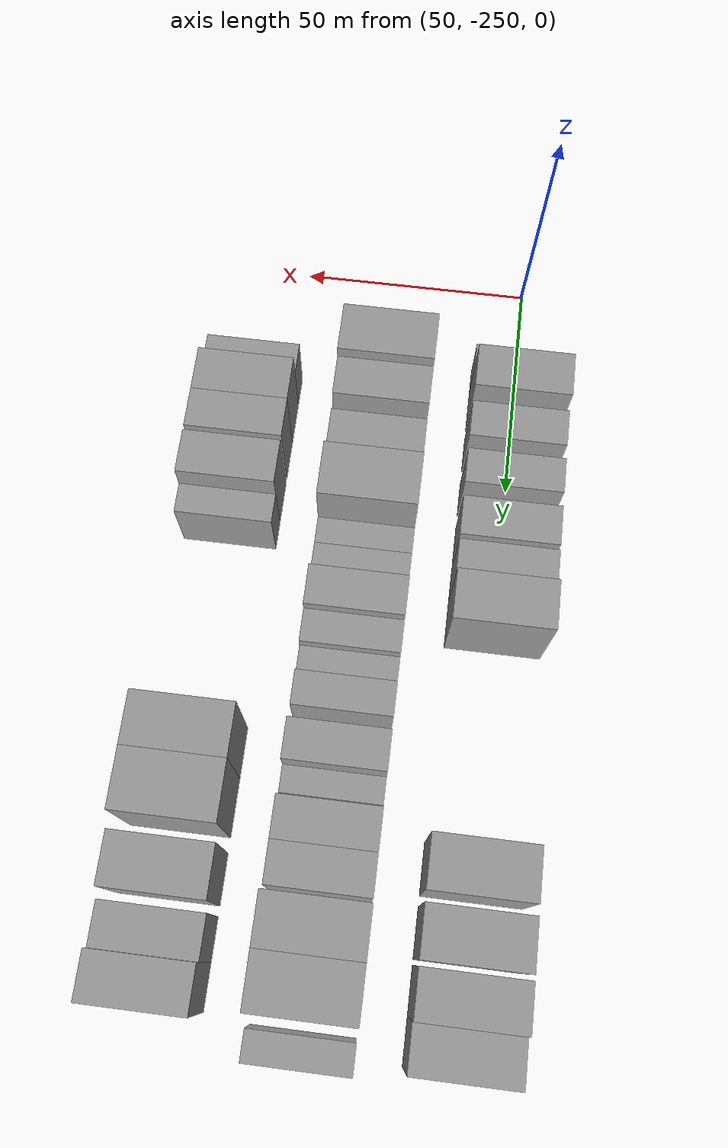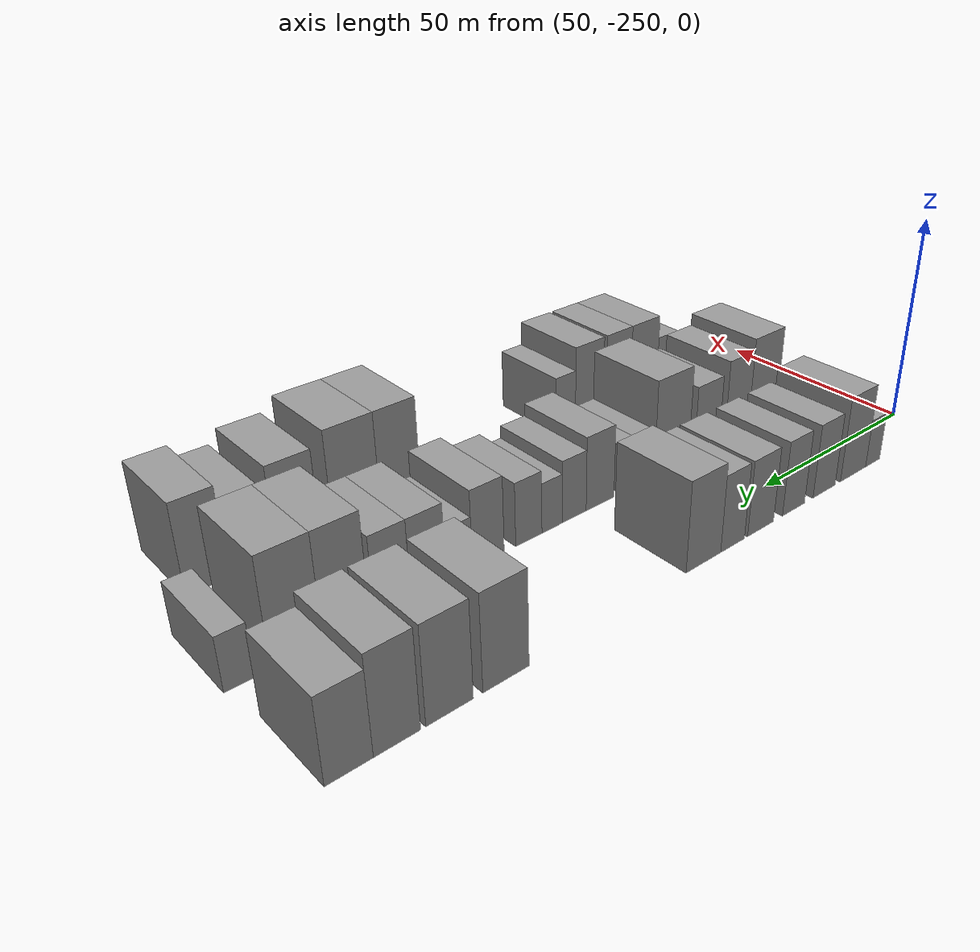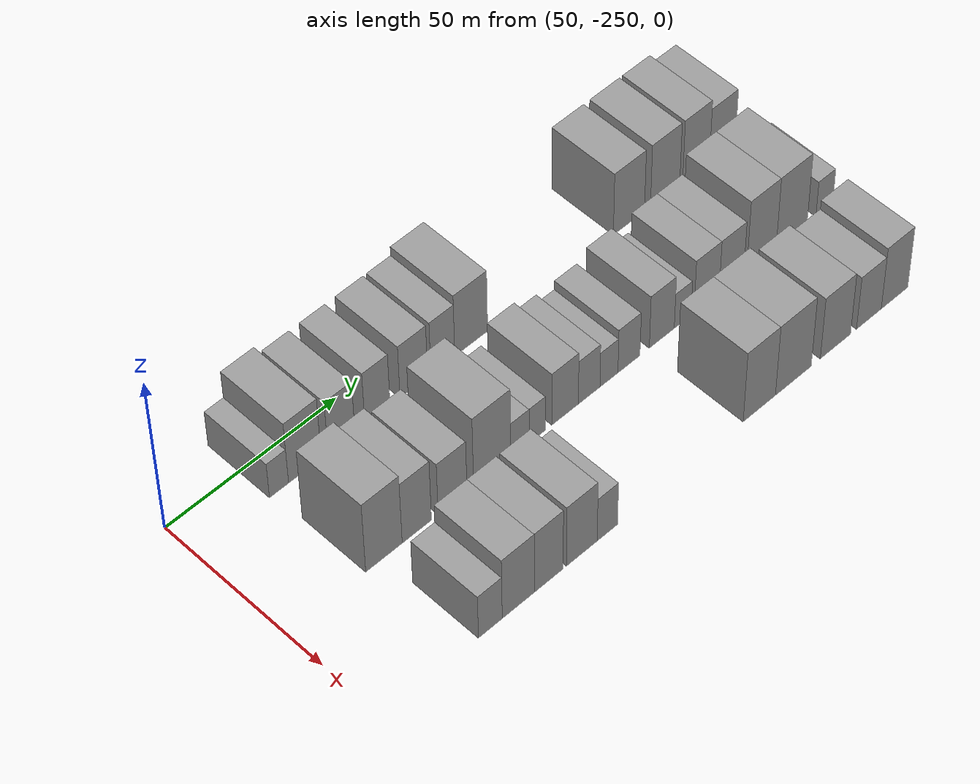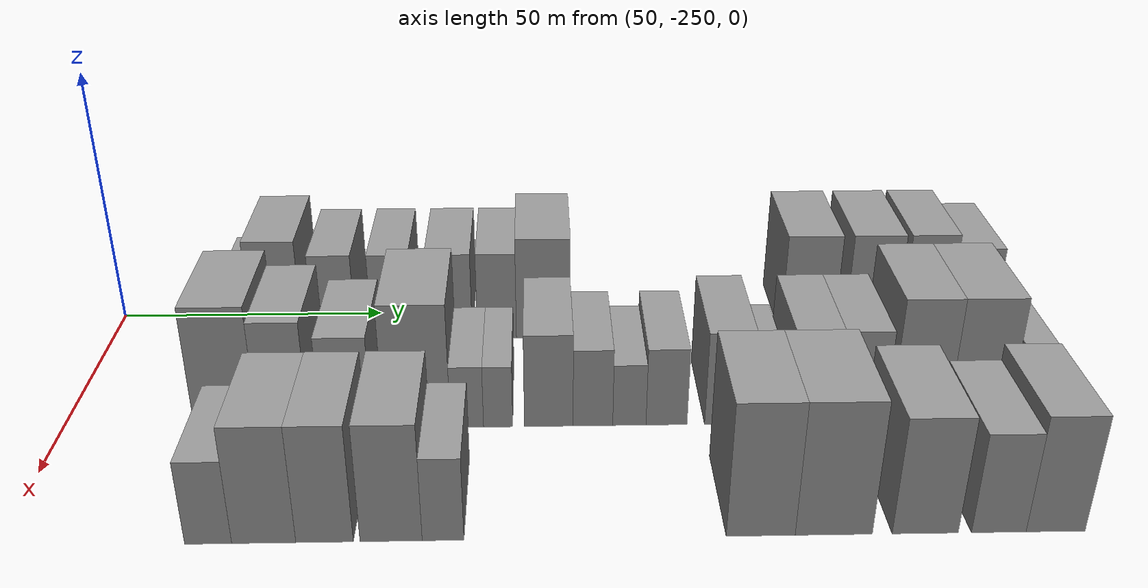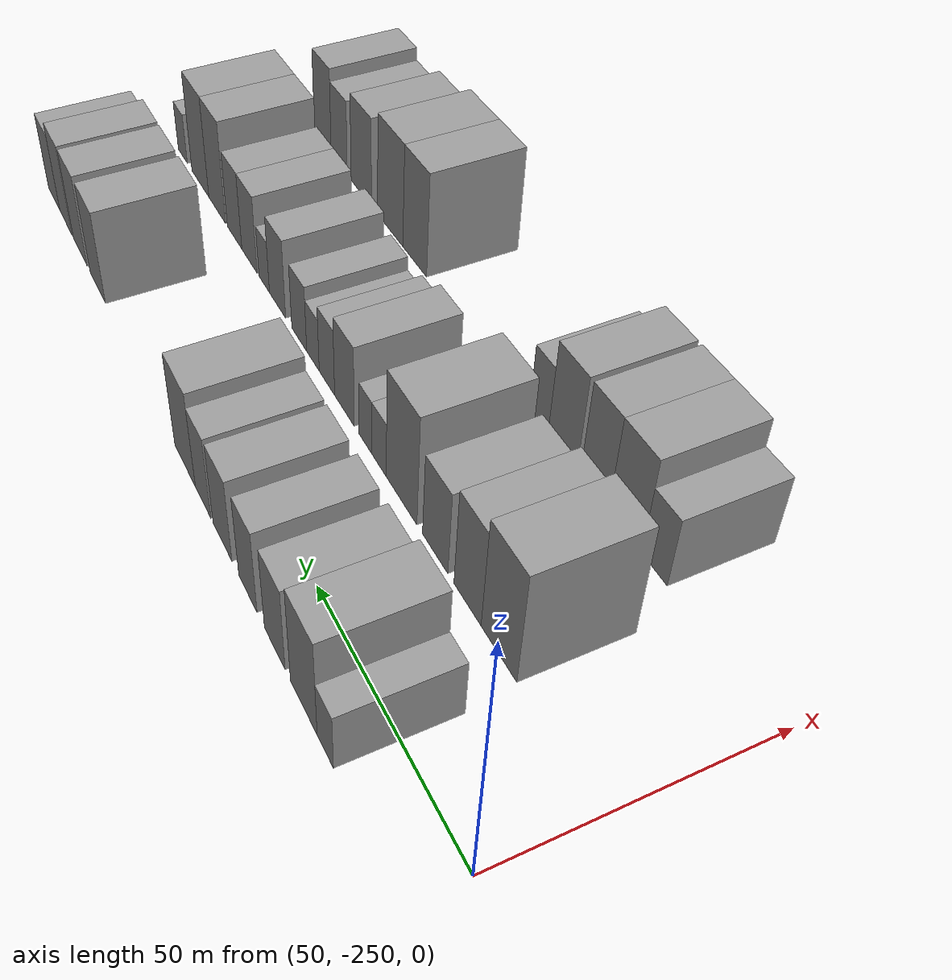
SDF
<sdf version="1.6">
 <world name="default">
  <model name="building_13">
   <static>1</static>
   <pose>50.0000 -226.0542 0 0.000000 0.000000 0.000000</pose>
   <link name="link">
    <pose>0 0 6.00 0 0 0</pose>
    <collision name="collision"><geometry><box><size>20.0000 5.5673 12.0000</size></box></geometry></collision>
    <visual name="visual">
     <cast_shadows>0</cast_shadows>
     <geometry><box><size>20.0000 5.5673 12.0000</size></box></geometry>
     <material>
      <script>
       <uri>model://grey_wall/materials/scripts</uri>
       <uri>model://grey_wall/materials/textures</uri>
       <name>vrc/grey_wall</name>
      </script>
     </material>
    </visual>
   </link>
  </model>
  <model name="building_14">
   <static>1</static>
   <pose>50.0000 -218.4649 0 0.000000 0.000000 0.000000</pose>
   <link name="link">
    <pose>0 0 10.50 0 0 0</pose>
    <collision name="collision"><geometry><box><size>20.0000 9.6113 21.0000</size></box></geometry></collision>
    <visual name="visual">
     <cast_shadows>0</cast_shadows>
     <geometry><box><size>20.0000 9.6113 21.0000</size></box></geometry>
     <material>
      <script>
       <uri>model://grey_wall/materials/scripts</uri>
       <uri>model://grey_wall/materials/textures</uri>
       <name>vrc/grey_wall</name>
      </script>
     </material>
    </visual>
   </link>
  </model>
  <model name="building_15">
   <static>1</static>
   <pose>50.0000 -207.6624 0 0.000000 0.000000 0.000000</pose>
   <link name="link">
    <pose>0 0 9.00 0 0 0</pose>
    <collision name="collision"><geometry><box><size>20.0000 7.9937 18.0000</size></box></geometry></collision>
    <visual name="visual">
     <cast_shadows>0</cast_shadows>
     <geometry><box><size>20.0000 7.9937 18.0000</size></box></geometry>
     <material>
      <script>
       <uri>model://grey_wall/materials/scripts</uri>
       <uri>model://grey_wall/materials/textures</uri>
       <name>vrc/grey_wall</name>
      </script>
     </material>
    </visual>
   </link>
  </model>
  <model name="building_16">
   <static>1</static>
   <pose>50.0000 -196.8680 0 0.000000 0.000000 0.000000</pose>
   <link name="link">
    <pose>0 0 9.00 0 0 0</pose>
    <collision name="collision"><geometry><box><size>20.0000 7.5952 18.0000</size></box></geometry></collision>
    <visual name="visual">
     <cast_shadows>0</cast_shadows>
     <geometry><box><size>20.0000 7.5952 18.0000</size></box></geometry>
     <material>
      <script>
       <uri>model://grey_wall/materials/scripts</uri>
       <uri>model://grey_wall/materials/textures</uri>
       <name>vrc/grey_wall</name>
      </script>
     </material>
    </visual>
   </link>
  </model>
  <model name="building_17">
   <static>1</static>
   <pose>50.0000 -185.8520 0 0.000000 0.000000 0.000000</pose>
   <link name="link">
    <pose>0 0 9.00 0 0 0</pose>
    <collision name="collision"><geometry><box><size>20.0000 8.4368 18.0000</size></box></geometry></collision>
    <visual name="visual">
     <cast_shadows>0</cast_shadows>
     <geometry><box><size>20.0000 8.4368 18.0000</size></box></geometry>
     <material>
      <script>
       <uri>model://grey_wall/materials/scripts</uri>
       <uri>model://grey_wall/materials/textures</uri>
       <name>vrc/grey_wall</name>
      </script>
     </material>
    </visual>
   </link>
  </model>
  <model name="building_18">
   <static>1</static>
   <pose>50.0000 -176.9500 0 0.000000 0.000000 0.000000</pose>
   <link name="link">
    <pose>0 0 9.00 0 0 0</pose>
    <collision name="collision"><geometry><box><size>20.0000 7.3672 18.0000</size></box></geometry></collision>
    <visual name="visual">
     <cast_shadows>0</cast_shadows>
     <geometry><box><size>20.0000 7.3672 18.0000</size></box></geometry>
     <material>
      <script>
       <uri>model://grey_wall/materials/scripts</uri>
       <uri>model://grey_wall/materials/textures</uri>
       <name>vrc/grey_wall</name>
      </script>
     </material>
    </visual>
   </link>
  </model>
  <model name="building_19">
   <static>1</static>
   <pose>50.0000 -168.1503 0 0.000000 0.000000 0.000000</pose>
   <link name="link">
    <pose>0 0 10.50 0 0 0</pose>
    <collision name="collision"><geometry><box><size>20.0000 10.2322 21.0000</size></box></geometry></collision>
    <visual name="visual">
     <cast_shadows>0</cast_shadows>
     <geometry><box><size>20.0000 10.2322 21.0000</size></box></geometry>
     <material>
      <script>
       <uri>model://grey_wall/materials/scripts</uri>
       <uri>model://grey_wall/materials/textures</uri>
       <name>vrc/grey_wall</name>
      </script>
     </material>
    </visual>
   </link>
  </model>
  <model name="building_20">
   <static>1</static>
   <pose>50.0000 -117.7029 0 0.000000 0.000000 0.000000</pose>
   <link name="link">
    <pose>0 0 10.50 0 0 0</pose>
    <collision name="collision"><geometry><box><size>20.0000 10.2209 21.0000</size></box></geometry></collision>
    <visual name="visual">
     <cast_shadows>0</cast_shadows>
     <geometry><box><size>20.0000 10.2209 21.0000</size></box></geometry>
     <material>
      <script>
       <uri>model://grey_wall/materials/scripts</uri>
       <uri>model://grey_wall/materials/textures</uri>
       <name>vrc/grey_wall</name>
      </script>
     </material>
    </visual>
   </link>
  </model>
  <model name="building_21">
   <static>1</static>
   <pose>50.0000 -105.7209 0 0.000000 0.000000 0.000000</pose>
   <link name="link">
    <pose>0 0 10.50 0 0 0</pose>
    <collision name="collision"><geometry><box><size>20.0000 9.7430 21.0000</size></box></geometry></collision>
    <visual name="visual">
     <cast_shadows>0</cast_shadows>
     <geometry><box><size>20.0000 9.7430 21.0000</size></box></geometry>
     <material>
      <script>
       <uri>model://grey_wall/materials/scripts</uri>
       <uri>model://grey_wall/materials/textures</uri>
       <name>vrc/grey_wall</name>
      </script>
     </material>
    </visual>
   </link>
  </model>
  <model name="building_22">
   <static>1</static>
   <pose>50.0000 -95.3315 0 0.000000 0.000000 0.000000</pose>
   <link name="link">
    <pose>0 0 10.50 0 0 0</pose>
    <collision name="collision"><geometry><box><size>20.0000 9.0359 21.0000</size></box></geometry></collision>
    <visual name="visual">
     <cast_shadows>0</cast_shadows>
     <geometry><box><size>20.0000 9.0359 21.0000</size></box></geometry>
     <material>
      <script>
       <uri>model://grey_wall/materials/scripts</uri>
       <uri>model://grey_wall/materials/textures</uri>
       <name>vrc/grey_wall</name>
      </script>
     </material>
    </visual>
   </link>
  </model>
  <model name="building_23">
   <static>1</static>
   <pose>50.0000 -86.3866 0 0.000000 0.000000 0.000000</pose>
   <link name="link">
    <pose>0 0 9.00 0 0 0</pose>
    <collision name="collision"><geometry><box><size>20.0000 8.8540 18.0000</size></box></geometry></collision>
    <visual name="visual">
     <cast_shadows>0</cast_shadows>
     <geometry><box><size>20.0000 8.8540 18.0000</size></box></geometry>
     <material>
      <script>
       <uri>model://grey_wall/materials/scripts</uri>
       <uri>model://grey_wall/materials/textures</uri>
       <name>vrc/grey_wall</name>
      </script>
     </material>
    </visual>
   </link>
  </model>
  <model name="building_89">
   <static>1</static>
   <pose>79.0000 -222.1416 0 0.000000 0.000000 0.000000</pose>
   <link name="link">
    <pose>0 0 12.00 0 0 0</pose>
    <collision name="collision"><geometry><box><size>20.0000 10.6684 24.0000</size></box></geometry></collision>
    <visual name="visual">
     <cast_shadows>0</cast_shadows>
     <geometry><box><size>20.0000 10.6684 24.0000</size></box></geometry>
     <material>
      <script>
       <uri>model://grey_wall/materials/scripts</uri>
       <uri>model://grey_wall/materials/textures</uri>
       <name>vrc/grey_wall</name>
      </script>
     </material>
    </visual>
   </link>
  </model>
  <model name="building_90">
   <static>1</static>
   <pose>79.0000 -212.4891 0 0.000000 0.000000 0.000000</pose>
   <link name="link">
    <pose>0 0 10.50 0 0 0</pose>
    <collision name="collision"><geometry><box><size>20.0000 8.6366 21.0000</size></box></geometry></collision>
    <visual name="visual">
     <cast_shadows>0</cast_shadows>
     <geometry><box><size>20.0000 8.6366 21.0000</size></box></geometry>
     <material>
      <script>
       <uri>model://grey_wall/materials/scripts</uri>
       <uri>model://grey_wall/materials/textures</uri>
       <name>vrc/grey_wall</name>
      </script>
     </material>
    </visual>
   </link>
  </model>
  <model name="building_91">
   <static>1</static>
   <pose>79.0000 -201.8551 0 0.000000 0.000000 0.000000</pose>
   <link name="link">
    <pose>0 0 9.00 0 0 0</pose>
    <collision name="collision"><geometry><box><size>20.0000 8.6316 18.0000</size></box></geometry></collision>
    <visual name="visual">
     <cast_shadows>0</cast_shadows>
     <geometry><box><size>20.0000 8.6316 18.0000</size></box></geometry>
     <material>
      <script>
       <uri>model://grey_wall/materials/scripts</uri>
       <uri>model://grey_wall/materials/textures</uri>
       <name>vrc/grey_wall</name>
      </script>
     </material>
    </visual>
   </link>
  </model>
  <model name="building_92">
   <static>1</static>
   <pose>79.0000 -189.8855 0 0.000000 0.000000 0.000000</pose>
   <link name="link">
    <pose>0 0 12.00 0 0 0</pose>
    <collision name="collision"><geometry><box><size>20.0000 11.3077 24.0000</size></box></geometry></collision>
    <visual name="visual">
     <cast_shadows>0</cast_shadows>
     <geometry><box><size>20.0000 11.3077 24.0000</size></box></geometry>
     <material>
      <script>
       <uri>model://grey_wall/materials/scripts</uri>
       <uri>model://grey_wall/materials/textures</uri>
       <name>vrc/grey_wall</name>
      </script>
     </material>
    </visual>
   </link>
  </model>
  <model name="building_93">
   <static>1</static>
   <pose>79.0000 -181.4176 0 0.000000 0.000000 0.000000</pose>
   <link name="link">
    <pose>0 0 6.00 0 0 0</pose>
    <collision name="collision"><geometry><box><size>20.0000 5.6279 12.0000</size></box></geometry></collision>
    <visual name="visual">
     <cast_shadows>0</cast_shadows>
     <geometry><box><size>20.0000 5.6279 12.0000</size></box></geometry>
     <material>
      <script>
       <uri>model://grey_wall/materials/scripts</uri>
       <uri>model://grey_wall/materials/textures</uri>
       <name>vrc/grey_wall</name>
      </script>
     </material>
    </visual>
   </link>
  </model>
  <model name="building_94">
   <static>1</static>
   <pose>79.0000 -176.1201 0 0.000000 0.000000 0.000000</pose>
   <link name="link">
    <pose>0 0 6.00 0 0 0</pose>
    <collision name="collision"><geometry><box><size>20.0000 4.9671 12.0000</size></box></geometry></collision>
    <visual name="visual">
     <cast_shadows>0</cast_shadows>
     <geometry><box><size>20.0000 4.9671 12.0000</size></box></geometry>
     <material>
      <script>
       <uri>model://grey_wall/materials/scripts</uri>
       <uri>model://grey_wall/materials/textures</uri>
       <name>vrc/grey_wall</name>
      </script>
     </material>
    </visual>
   </link>
  </model>
  <model name="building_95">
   <static>1</static>
   <pose>79.0000 -167.5046 0 0.000000 0.000000 0.000000</pose>
   <link name="link">
    <pose>0 0 9.00 0 0 0</pose>
    <collision name="collision"><geometry><box><size>20.0000 8.2639 18.0000</size></box></geometry></collision>
    <visual name="visual">
     <cast_shadows>0</cast_shadows>
     <geometry><box><size>20.0000 8.2639 18.0000</size></box></geometry>
     <material>
      <script>
       <uri>model://grey_wall/materials/scripts</uri>
       <uri>model://grey_wall/materials/textures</uri>
       <name>vrc/grey_wall</name>
      </script>
     </material>
    </visual>
   </link>
  </model>
  <model name="building_96">
   <static>1</static>
   <pose>79.0000 -159.9873 0 0.000000 0.000000 0.000000</pose>
   <link name="link">
    <pose>0 0 7.50 0 0 0</pose>
    <collision name="collision"><geometry><box><size>20.0000 6.7706 15.0000</size></box></geometry></collision>
    <visual name="visual">
     <cast_shadows>0</cast_shadows>
     <geometry><box><size>20.0000 6.7706 15.0000</size></box></geometry>
     <material>
      <script>
       <uri>model://grey_wall/materials/scripts</uri>
       <uri>model://grey_wall/materials/textures</uri>
       <name>vrc/grey_wall</name>
      </script>
     </material>
    </visual>
   </link>
  </model>
  <model name="building_97">
   <static>1</static>
   <pose>79.0000 -153.7625 0 0.000000 0.000000 0.000000</pose>
   <link name="link">
    <pose>0 0 6.00 0 0 0</pose>
    <collision name="collision"><geometry><box><size>20.0000 5.6791 12.0000</size></box></geometry></collision>
    <visual name="visual">
     <cast_shadows>0</cast_shadows>
     <geometry><box><size>20.0000 5.6791 12.0000</size></box></geometry>
     <material>
      <script>
       <uri>model://grey_wall/materials/scripts</uri>
       <uri>model://grey_wall/materials/textures</uri>
       <name>vrc/grey_wall</name>
      </script>
     </material>
    </visual>
   </link>
  </model>
  <model name="building_98">
   <static>1</static>
   <pose>79.0000 -147.4094 0 0.000000 0.000000 0.000000</pose>
   <link name="link">
    <pose>0 0 7.50 0 0 0</pose>
    <collision name="collision"><geometry><box><size>20.0000 7.0272 15.0000</size></box></geometry></collision>
    <visual name="visual">
     <cast_shadows>0</cast_shadows>
     <geometry><box><size>20.0000 7.0272 15.0000</size></box></geometry>
     <material>
      <script>
       <uri>model://grey_wall/materials/scripts</uri>
       <uri>model://grey_wall/materials/textures</uri>
       <name>vrc/grey_wall</name>
      </script>
     </material>
    </visual>
   </link>
  </model>
  <model name="building_99">
   <static>1</static>
   <pose>79.0000 -136.8767 0 0.000000 0.000000 0.000000</pose>
   <link name="link">
    <pose>0 0 9.00 0 0 0</pose>
    <collision name="collision"><geometry><box><size>20.0000 8.0382 18.0000</size></box></geometry></collision>
    <visual name="visual">
     <cast_shadows>0</cast_shadows>
     <geometry><box><size>20.0000 8.0382 18.0000</size></box></geometry>
     <material>
      <script>
       <uri>model://grey_wall/materials/scripts</uri>
       <uri>model://grey_wall/materials/textures</uri>
       <name>vrc/grey_wall</name>
      </script>
     </material>
    </visual>
   </link>
  </model>
  <model name="building_100">
   <static>1</static>
   <pose>79.0000 -130.1507 0 0.000000 0.000000 0.000000</pose>
   <link name="link">
    <pose>0 0 6.00 0 0 0</pose>
    <collision name="collision"><geometry><box><size>20.0000 5.4139 12.0000</size></box></geometry></collision>
    <visual name="visual">
     <cast_shadows>0</cast_shadows>
     <geometry><box><size>20.0000 5.4139 12.0000</size></box></geometry>
     <material>
      <script>
       <uri>model://grey_wall/materials/scripts</uri>
       <uri>model://grey_wall/materials/textures</uri>
       <name>vrc/grey_wall</name>
      </script>
     </material>
    </visual>
   </link>
  </model>
  <model name="building_101">
   <static>1</static>
   <pose>79.0000 -122.3337 0 0.000000 0.000000 0.000000</pose>
   <link name="link">
    <pose>0 0 9.00 0 0 0</pose>
    <collision name="collision"><geometry><box><size>20.0000 8.2200 18.0000</size></box></geometry></collision>
    <visual name="visual">
     <cast_shadows>0</cast_shadows>
     <geometry><box><size>20.0000 8.2200 18.0000</size></box></geometry>
     <material>
      <script>
       <uri>model://grey_wall/materials/scripts</uri>
       <uri>model://grey_wall/materials/textures</uri>
       <name>vrc/grey_wall</name>
      </script>
     </material>
    </visual>
   </link>
  </model>
  <model name="building_102">
   <static>1</static>
   <pose>79.0000 -114.1577 0 0.000000 0.000000 0.000000</pose>
   <link name="link">
    <pose>0 0 9.00 0 0 0</pose>
    <collision name="collision"><geometry><box><size>20.0000 8.1321 18.0000</size></box></geometry></collision>
    <visual name="visual">
     <cast_shadows>0</cast_shadows>
     <geometry><box><size>20.0000 8.1321 18.0000</size></box></geometry>
     <material>
      <script>
       <uri>model://grey_wall/materials/scripts</uri>
       <uri>model://grey_wall/materials/textures</uri>
       <name>vrc/grey_wall</name>
      </script>
     </material>
    </visual>
   </link>
  </model>
  <model name="building_103">
   <static>1</static>
   <pose>79.0000 -104.1636 0 0.000000 0.000000 0.000000</pose>
   <link name="link">
    <pose>0 0 12.00 0 0 0</pose>
    <collision name="collision"><geometry><box><size>20.0000 9.8561 24.0000</size></box></geometry></collision>
    <visual name="visual">
     <cast_shadows>0</cast_shadows>
     <geometry><box><size>20.0000 9.8561 24.0000</size></box></geometry>
     <material>
      <script>
       <uri>model://grey_wall/materials/scripts</uri>
       <uri>model://grey_wall/materials/textures</uri>
       <name>vrc/grey_wall</name>
      </script>
     </material>
    </visual>
   </link>
  </model>
  <model name="building_104">
   <static>1</static>
   <pose>79.0000 -94.0075 0 0.000000 0.000000 0.000000</pose>
   <link name="link">
    <pose>0 0 12.00 0 0 0</pose>
    <collision name="collision"><geometry><box><size>20.0000 10.4560 24.0000</size></box></geometry></collision>
    <visual name="visual">
     <cast_shadows>0</cast_shadows>
     <geometry><box><size>20.0000 10.4560 24.0000</size></box></geometry>
     <material>
      <script>
       <uri>model://grey_wall/materials/scripts</uri>
       <uri>model://grey_wall/materials/textures</uri>
       <name>vrc/grey_wall</name>
      </script>
     </material>
    </visual>
   </link>
  </model>
  <model name="building_105">
   <static>1</static>
   <pose>79.0000 -82.8937 0 0.000000 0.000000 0.000000</pose>
   <link name="link">
    <pose>0 0 6.00 0 0 0</pose>
    <collision name="collision"><geometry><box><size>20.0000 5.7716 12.0000</size></box></geometry></collision>
    <visual name="visual">
     <cast_shadows>0</cast_shadows>
     <geometry><box><size>20.0000 5.7716 12.0000</size></box></geometry>
     <material>
      <script>
       <uri>model://grey_wall/materials/scripts</uri>
       <uri>model://grey_wall/materials/textures</uri>
       <name>vrc/grey_wall</name>
      </script>
     </material>
    </visual>
   </link>
  </model>
  <model name="building_165">
   <static>1</static>
   <pose>108.0000 -218.7602 0 0.000000 0.000000 0.000000</pose>
   <link name="link">
    <pose>0 0 7.50 0 0 0</pose>
    <collision name="collision"><geometry><box><size>20.0000 6.9812 15.0000</size></box></geometry></collision>
    <visual name="visual">
     <cast_shadows>0</cast_shadows>
     <geometry><box><size>20.0000 6.9812 15.0000</size></box></geometry>
     <material>
      <script>
       <uri>model://grey_wall/materials/scripts</uri>
       <uri>model://grey_wall/materials/textures</uri>
       <name>vrc/grey_wall</name>
      </script>
     </material>
    </visual>
   </link>
  </model>
  <model name="building_166">
   <static>1</static>
   <pose>108.0000 -210.4960 0 0.000000 0.000000 0.000000</pose>
   <link name="link">
    <pose>0 0 10.50 0 0 0</pose>
    <collision name="collision"><geometry><box><size>20.0000 9.5470 21.0000</size></box></geometry></collision>
    <visual name="visual">
     <cast_shadows>0</cast_shadows>
     <geometry><box><size>20.0000 9.5470 21.0000</size></box></geometry>
     <material>
      <script>
       <uri>model://grey_wall/materials/scripts</uri>
       <uri>model://grey_wall/materials/textures</uri>
       <name>vrc/grey_wall</name>
      </script>
     </material>
    </visual>
   </link>
  </model>
  <model name="building_167">
   <static>1</static>
   <pose>108.0000 -201.4382 0 0.000000 0.000000 0.000000</pose>
   <link name="link">
    <pose>0 0 10.50 0 0 0</pose>
    <collision name="collision"><geometry><box><size>20.0000 8.5687 21.0000</size></box></geometry></collision>
    <visual name="visual">
     <cast_shadows>0</cast_shadows>
     <geometry><box><size>20.0000 8.5687 21.0000</size></box></geometry>
     <material>
      <script>
       <uri>model://grey_wall/materials/scripts</uri>
       <uri>model://grey_wall/materials/textures</uri>
       <name>vrc/grey_wall</name>
      </script>
     </material>
    </visual>
   </link>
  </model>
  <model name="building_168">
   <static>1</static>
   <pose>108.0000 -191.5086 0 0.000000 0.000000 0.000000</pose>
   <link name="link">
    <pose>0 0 10.50 0 0 0</pose>
    <collision name="collision"><geometry><box><size>20.0000 9.2904 21.0000</size></box></geometry></collision>
    <visual name="visual">
     <cast_shadows>0</cast_shadows>
     <geometry><box><size>20.0000 9.2904 21.0000</size></box></geometry>
     <material>
      <script>
       <uri>model://grey_wall/materials/scripts</uri>
       <uri>model://grey_wall/materials/textures</uri>
       <name>vrc/grey_wall</name>
      </script>
     </material>
    </visual>
   </link>
  </model>
  <model name="building_169">
   <static>1</static>
   <pose>108.0000 -183.7386 0 0.000000 0.000000 0.000000</pose>
   <link name="link">
    <pose>0 0 7.50 0 0 0</pose>
    <collision name="collision"><geometry><box><size>20.0000 6.2496 15.0000</size></box></geometry></collision>
    <visual name="visual">
     <cast_shadows>0</cast_shadows>
     <geometry><box><size>20.0000 6.2496 15.0000</size></box></geometry>
     <material>
      <script>
       <uri>model://grey_wall/materials/scripts</uri>
       <uri>model://grey_wall/materials/textures</uri>
       <name>vrc/grey_wall</name>
      </script>
     </material>
    </visual>
   </link>
  </model>
  <model name="building_170">
   <static>1</static>
   <pose>108.0000 -135.9802 0 0.000000 0.000000 0.000000</pose>
   <link name="link">
    <pose>0 0 12.00 0 0 0</pose>
    <collision name="collision"><geometry><box><size>20.0000 10.4224 24.0000</size></box></geometry></collision>
    <visual name="visual">
     <cast_shadows>0</cast_shadows>
     <geometry><box><size>20.0000 10.4224 24.0000</size></box></geometry>
     <material>
      <script>
       <uri>model://grey_wall/materials/scripts</uri>
       <uri>model://grey_wall/materials/textures</uri>
       <name>vrc/grey_wall</name>
      </script>
     </material>
    </visual>
   </link>
  </model>
  <model name="building_171">
   <static>1</static>
   <pose>108.0000 -124.9229 0 0.000000 0.000000 0.000000</pose>
   <link name="link">
    <pose>0 0 12.00 0 0 0</pose>
    <collision name="collision"><geometry><box><size>20.0000 11.6921 24.0000</size></box></geometry></collision>
    <visual name="visual">
     <cast_shadows>0</cast_shadows>
     <geometry><box><size>20.0000 11.6921 24.0000</size></box></geometry>
     <material>
      <script>
       <uri>model://grey_wall/materials/scripts</uri>
       <uri>model://grey_wall/materials/textures</uri>
       <name>vrc/grey_wall</name>
      </script>
     </material>
    </visual>
   </link>
  </model>
  <model name="building_172">
   <static>1</static>
   <pose>108.0000 -111.0536 0 0.000000 0.000000 0.000000</pose>
   <link name="link">
    <pose>0 0 10.50 0 0 0</pose>
    <collision name="collision"><geometry><box><size>20.0000 10.0466 21.0000</size></box></geometry></collision>
    <visual name="visual">
     <cast_shadows>0</cast_shadows>
     <geometry><box><size>20.0000 10.0466 21.0000</size></box></geometry>
     <material>
      <script>
       <uri>model://grey_wall/materials/scripts</uri>
       <uri>model://grey_wall/materials/textures</uri>
       <name>vrc/grey_wall</name>
      </script>
     </material>
    </visual>
   </link>
  </model>
  <model name="building_173">
   <static>1</static>
   <pose>108.0000 -99.8712 0 0.000000 0.000000 0.000000</pose>
   <link name="link">
    <pose>0 0 9.00 0 0 0</pose>
    <collision name="collision"><geometry><box><size>20.0000 8.3182 18.0000</size></box></geometry></collision>
    <visual name="visual">
     <cast_shadows>0</cast_shadows>
     <geometry><box><size>20.0000 8.3182 18.0000</size></box></geometry>
     <material>
      <script>
       <uri>model://grey_wall/materials/scripts</uri>
       <uri>model://grey_wall/materials/textures</uri>
       <name>vrc/grey_wall</name>
      </script>
     </material>
    </visual>
   </link>
  </model>
  <model name="building_174">
   <static>1</static>
   <pose>108.0000 -91.2079 0 0.000000 0.000000 0.000000</pose>
   <link name="link">
    <pose>0 0 10.50 0 0 0</pose>
    <collision name="collision"><geometry><box><size>20.0000 9.0084 21.0000</size></box></geometry></collision>
    <visual name="visual">
     <cast_shadows>0</cast_shadows>
     <geometry><box><size>20.0000 9.0084 21.0000</size></box></geometry>
     <material>
      <script>
       <uri>model://grey_wall/materials/scripts</uri>
       <uri>model://grey_wall/materials/textures</uri>
       <name>vrc/grey_wall</name>
      </script>
     </material>
    </visual>
   </link>
  </model>
 </world>
</sdf>
